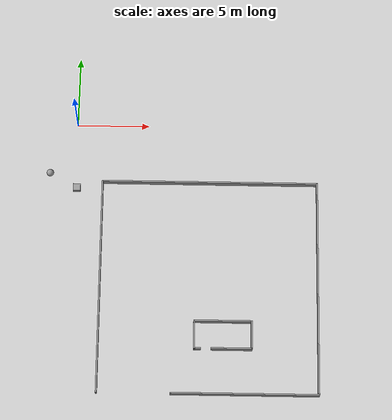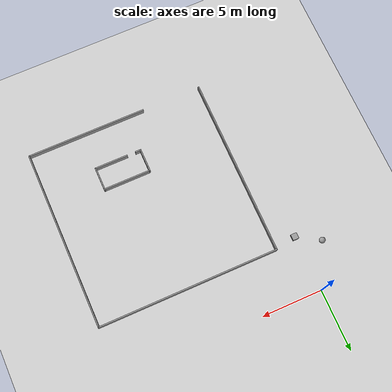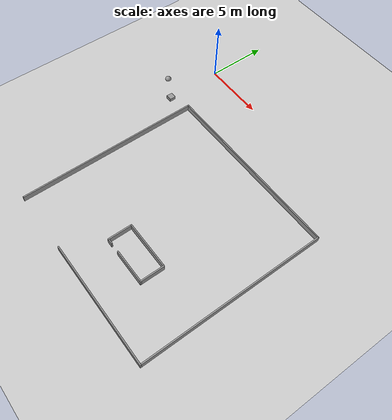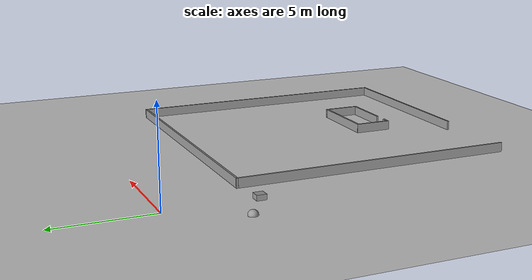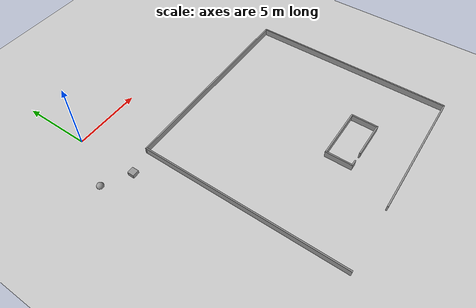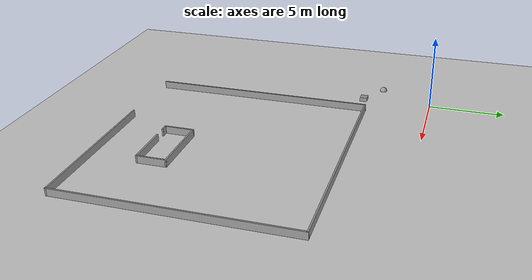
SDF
<sdf version="1.6">
 <world name="default">
  <model name="ground_plane">
   <static>1</static>
   <link name="link">
    <collision name="collision">
     <geometry><plane><normal>0 0 1</normal><size>40 40</size></plane></geometry>
     <surface>
      <contact><collide_bitmask>65535</collide_bitmask></contact>
      <friction><ode><mu>100</mu><mu2>50</mu2></ode></friction>
     </surface>
     <max_contacts>15</max_contacts>
    </collision>
    <visual name="visual">
     <cast_shadows>0</cast_shadows>
     <geometry><plane><normal>0 0 1</normal><size>40 40</size></plane></geometry>
     <material>
      <script><uri>file://media/materials/scripts/gazebo.material</uri><name>Gazebo/Grey</name></script>
     </material>
    </visual>
   </link>
  </model>
  <model name="shape7">
   <pose>9.3 -11.7 0 0 -0 0</pose>
   <link name="Wall_14">
    <collision name="Wall_14_Collision">
     <geometry><box><size>15 0.1 0.5</size></box></geometry>
     <pose>0 0 0.25 0 -0 0</pose>
    </collision>
    <visual name="Wall_14_Visual">
     <pose>0 0 0.25 0 -0 0</pose>
     <geometry><box><size>15 0.1 0.5</size></box></geometry>
     <material>
      <script><uri>file://media/materials/scripts/gazebo.material</uri><name>Gazebo/Grey</name></script>
      <ambient>1 1 1 1</ambient>
     </material>
     <meta><layer>0</layer></meta>
    </visual>
    <pose>0 7.45 0 0 -0 0</pose>
   </link>
   <link name="Wall_15">
    <collision name="Wall_15_Collision">
     <geometry><box><size>15 0.1 0.5</size></box></geometry>
     <pose>0 0 0.25 0 -0 0</pose>
    </collision>
    <visual name="Wall_15_Visual">
     <pose>0 0 0.25 0 -0 0</pose>
     <geometry><box><size>15 0.1 0.5</size></box></geometry>
     <material>
      <script><uri>file://media/materials/scripts/gazebo.material</uri><name>Gazebo/Grey</name></script>
      <ambient>1 1 1 1</ambient>
     </material>
     <meta><layer>0</layer></meta>
    </visual>
    <pose>7.45 -0 0 0 -0 -1.5708</pose>
   </link>
   <link name="Wall_16">
    <collision name="Wall_16_Collision">
     <geometry><box><size>10 0.1 0.5</size></box></geometry>
     <pose>0 0 0.25 0 -0 0</pose>
    </collision>
    <visual name="Wall_16_Visual">
     <pose>0 0 0.25 0 -0 0</pose>
     <geometry><box><size>10 0.1 0.5</size></box></geometry>
     <material>
      <script><uri>file://media/materials/scripts/gazebo.material</uri><name>Gazebo/Grey</name></script>
      <ambient>1 1 1 1</ambient>
     </material>
     <meta><layer>0</layer></meta>
    </visual>
    <pose>2.5 -7.45 0 0 -0 3.14159</pose>
   </link>
   <link name="Wall_18">
    <collision name="Wall_18_Collision">
     <geometry><box><size>15 0.1 0.5</size></box></geometry>
     <pose>0 0 0.25 0 -0 0</pose>
    </collision>
    <visual name="Wall_18_Visual">
     <pose>0 0 0.25 0 -0 0</pose>
     <geometry><box><size>15 0.1 0.5</size></box></geometry>
     <material>
      <script><uri>file://media/materials/scripts/gazebo.material</uri><name>Gazebo/Grey</name></script>
      <ambient>1 1 1 1</ambient>
     </material>
     <meta><layer>0</layer></meta>
    </visual>
    <pose>-7.45 -0 0 0 -0 -1.5708</pose>
   </link>
   <static>1</static>
  </model>
  <model name="shape2">
   <pose>10.3 -15.1 0 0 -0 0</pose>
   <link name="Wall_0">
    <collision name="Wall_0_Collision">
     <geometry><box><size>3.98685 0.1 0.5</size></box></geometry>
     <pose>0 0 0.25 0 -0 0</pose>
    </collision>
    <visual name="Wall_0_Visual">
     <pose>0 0 0.25 0 -0 0</pose>
     <geometry><box><size>3.98685 0.1 0.5</size></box></geometry>
     <material>
      <script><uri>file://media/materials/scripts/gazebo.material</uri><name>Gazebo/Grey</name></script>
      <ambient>1 1 1 1</ambient>
     </material>
     <meta><layer>0</layer></meta>
    </visual>
    <pose>0.003288 0.95 0 0 -0 0</pose>
   </link>
   <link name="Wall_1">
    <collision name="Wall_1_Collision">
     <geometry><box><size>2 0.1 0.5</size></box></geometry>
     <pose>0 0 0.25 0 -0 0</pose>
    </collision>
    <visual name="Wall_1_Visual">
     <pose>0 0 0.25 0 -0 0</pose>
     <geometry><box><size>2 0.1 0.5</size></box></geometry>
     <material>
      <script><uri>file://media/materials/scripts/gazebo.material</uri><name>Gazebo/Grey</name></script>
      <ambient>1 1 1 1</ambient>
     </material>
     <meta><layer>0</layer></meta>
    </visual>
    <pose>1.94671 0 0 0 -0 -1.5708</pose>
   </link>
   <link name="Wall_2">
    <collision name="Wall_2_Collision">
     <geometry><box><size>2.8 0.1 0.5</size></box></geometry>
     <pose>0 0 0.25 0 -0 0</pose>
    </collision>
    <visual name="Wall_2_Visual">
     <pose>0 0 0.25 0 -0 0</pose>
     <geometry><box><size>2.8 0.1 0.5</size></box></geometry>
     <material>
      <script><uri>file://media/materials/scripts/gazebo.material</uri><name>Gazebo/Grey</name></script>
      <ambient>1 1 1 1</ambient>
     </material>
     <meta><layer>0</layer></meta>
    </visual>
    <pose>0.596712 -0.95 0 0 -0 3.14159</pose>
   </link>
   <link name="Wall_4">
    <collision name="Wall_4_Collision">
     <geometry><box><size>2 0.1 0.5</size></box></geometry>
     <pose>0 0 0.25 0 -0 0</pose>
    </collision>
    <visual name="Wall_4_Visual">
     <pose>0 0 0.25 0 -0 0</pose>
     <geometry><box><size>2 0.1 0.5</size></box></geometry>
     <material>
      <script><uri>file://media/materials/scripts/gazebo.material</uri><name>Gazebo/Grey</name></script>
      <ambient>1 1 1 1</ambient>
     </material>
     <meta><layer>0</layer></meta>
    </visual>
    <pose>-1.94671 0 0 0 -0 -1.5708</pose>
   </link>
   <link name="Wall_5">
    <collision name="Wall_5_Collision">
     <geometry><box><size>0.5 0.1 0.5</size></box></geometry>
     <pose>0 0 0.25 0 -0 0</pose>
    </collision>
    <visual name="Wall_5_Visual">
     <pose>0 0 0.25 0 -0 0</pose>
     <geometry><box><size>0.5 0.1 0.5</size></box></geometry>
     <material>
      <script><uri>file://media/materials/scripts/gazebo.material</uri><name>Gazebo/Grey</name></script>
      <ambient>1 1 1 1</ambient>
     </material>
     <meta><layer>0</layer></meta>
    </visual>
    <pose>-1.74671 -0.95 0 0 -0 0</pose>
   </link>
   <static>1</static>
  </model>
  <model name="ball_d=50">
   <link name="link_1">
    <inertial>
     <mass>1</mass>
     <inertia><ixx>0.1</ixx><ixy>0</ixy><ixz>0</ixz><iyy>0.1</iyy><iyz>0</iyz><izz>0.1</izz></inertia>
    </inertial>
    <pose>-1.85 -3.55 0 0 -0 0</pose>
    <visual name="visual">
     <geometry><sphere><radius>0.25</radius></sphere></geometry>
     <material>
      <lighting>1</lighting>
      <script><uri>file://media/materials/scripts/gazebo.material</uri><name>Gazebo/Grey</name></script>
      <shader type="vertex"><normal_map>__default__</normal_map></shader>
      <ambient>0.3 0.3 0.3 1</ambient>
      <diffuse>0.7 0.7 0.7 1</diffuse>
      <specular>0.01 0.01 0.01 1</specular>
      <emissive>0 0 0 1</emissive>
     </material>
    </visual>
    <collision name="collision">
     <geometry><sphere><radius>0.25</radius></sphere></geometry>
     <surface>
      <friction>
       <ode><mu>1</mu><mu2>1</mu2><fdir1>0 0 0</fdir1><slip1>0</slip1><slip2>0</slip2></ode>
       <torsional>
        <coefficient>1</coefficient>
        <patch_radius>0</patch_radius>
        <surface_radius>0</surface_radius>
        <use_patch_radius>1</use_patch_radius>
        <ode><slip>0</slip></ode>
       </torsional>
      </friction>
      <bounce><restitution_coefficient>0</restitution_coefficient><threshold>1e+06</threshold></bounce>
      <contact>
       <collide_without_contact>0</collide_without_contact>
       <collide_without_contact_bitmask>1</collide_without_contact_bitmask>
       <collide_bitmask>1</collide_bitmask>
       <ode>
        <soft_cfm>0</soft_cfm>
        <soft_erp>0.2</soft_erp>
        <kp>1e+13</kp>
        <kd>1</kd>
        <max_vel>0.01</max_vel>
        <min_depth>0</min_depth>
       </ode>
       <bullet>
        <split_impulse>1</split_impulse>
        <split_impulse_penetration_threshold>-0.01</split_impulse_penetration_threshold>
        <soft_cfm>0</soft_cfm>
        <soft_erp>0.2</soft_erp>
        <kp>1e+13</kp>
        <kd>1</kd>
       </bullet>
      </contact>
     </surface>
    </collision>
   </link>
   <static>0</static>
  </model>
  <model name="box_d=50">
   <link name="link_2">
    <inertial>
     <mass>1</mass>
     <inertia>
      <ixx>0.166667</ixx>
      <ixy>0</ixy>
      <ixz>0</ixz>
      <iyy>0.166667</iyy>
      <iyz>0</iyz>
      <izz>0.166667</izz>
     </inertia>
    </inertial>
    <pose>0.0499992 -4.65 0 0 -0 0</pose>
    <visual name="visual">
     <geometry><box><size>0.5 0.5 0.5</size></box></geometry>
     <material>
      <lighting>1</lighting>
      <script><uri>file://media/materials/scripts/gazebo.material</uri><name>Gazebo/Grey</name></script>
      <shader type="vertex"><normal_map>__default__</normal_map></shader>
      <ambient>0.3 0.3 0.3 1</ambient>
      <diffuse>0.7 0.7 0.7 1</diffuse>
      <specular>0.01 0.01 0.01 1</specular>
      <emissive>0 0 0 1</emissive>
     </material>
    </visual>
    <collision name="collision">
     <geometry><box><size>0.5 0.5 0.5</size></box></geometry>
     <surface>
      <friction>
       <ode><mu>1</mu><mu2>1</mu2><fdir1>0 0 0</fdir1><slip1>0</slip1><slip2>0</slip2></ode>
       <torsional>
        <coefficient>1</coefficient>
        <patch_radius>0</patch_radius>
        <surface_radius>0</surface_radius>
        <use_patch_radius>1</use_patch_radius>
        <ode><slip>0</slip></ode>
       </torsional>
      </friction>
      <bounce><restitution_coefficient>0</restitution_coefficient><threshold>1e+06</threshold></bounce>
      <contact>
       <collide_without_contact>0</collide_without_contact>
       <collide_without_contact_bitmask>1</collide_without_contact_bitmask>
       <collide_bitmask>1</collide_bitmask>
       <ode>
        <soft_cfm>0</soft_cfm>
        <soft_erp>0.2</soft_erp>
        <kp>1e+13</kp>
        <kd>1</kd>
        <max_vel>0.01</max_vel>
        <min_depth>0</min_depth>
       </ode>
       <bullet>
        <split_impulse>1</split_impulse>
        <split_impulse_penetration_threshold>-0.01</split_impulse_penetration_threshold>
        <soft_cfm>0</soft_cfm>
        <soft_erp>0.2</soft_erp>
        <kp>1e+13</kp>
        <kd>1</kd>
       </bullet>
      </contact>
     </surface>
    </collision>
   </link>
   <static>0</static>
  </model>
 </world>
</sdf>
